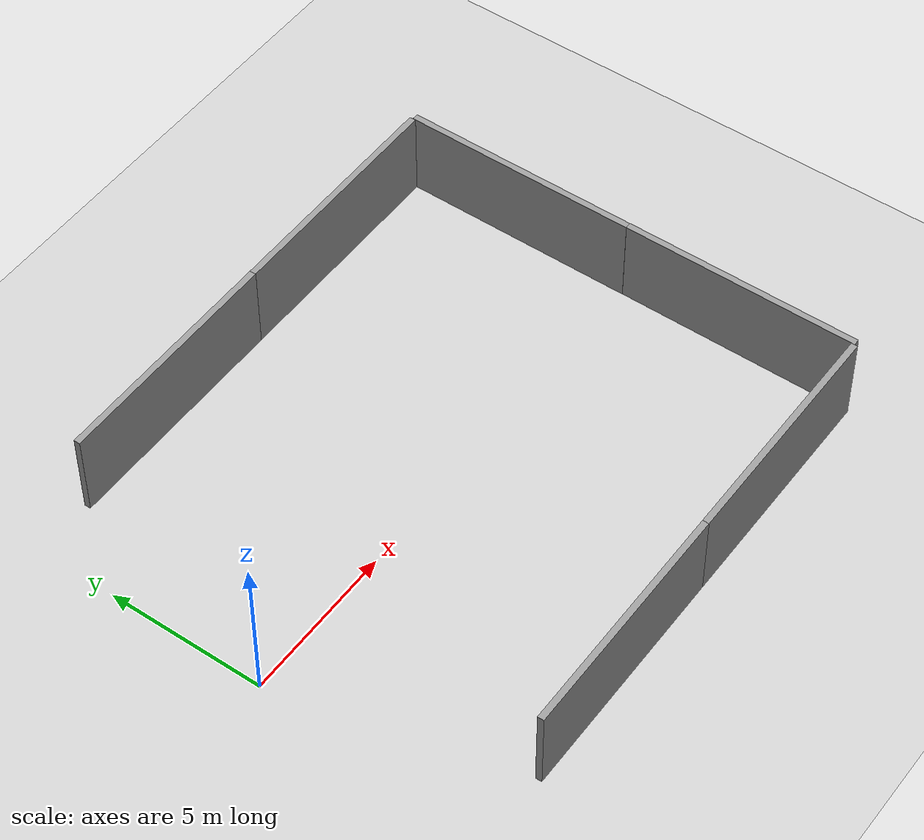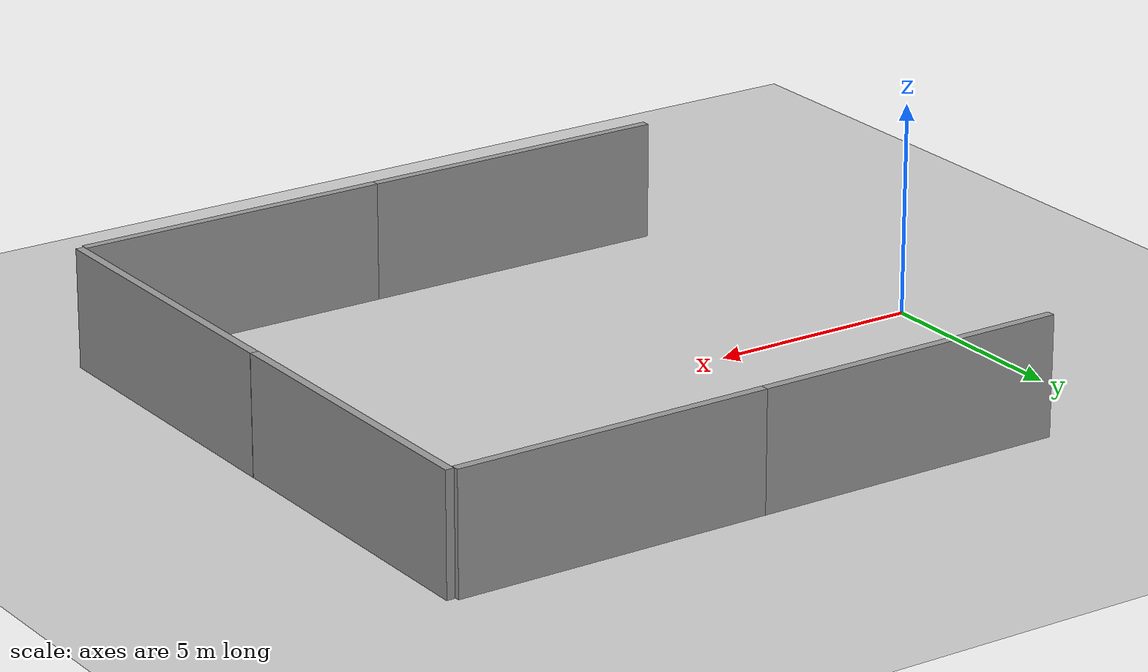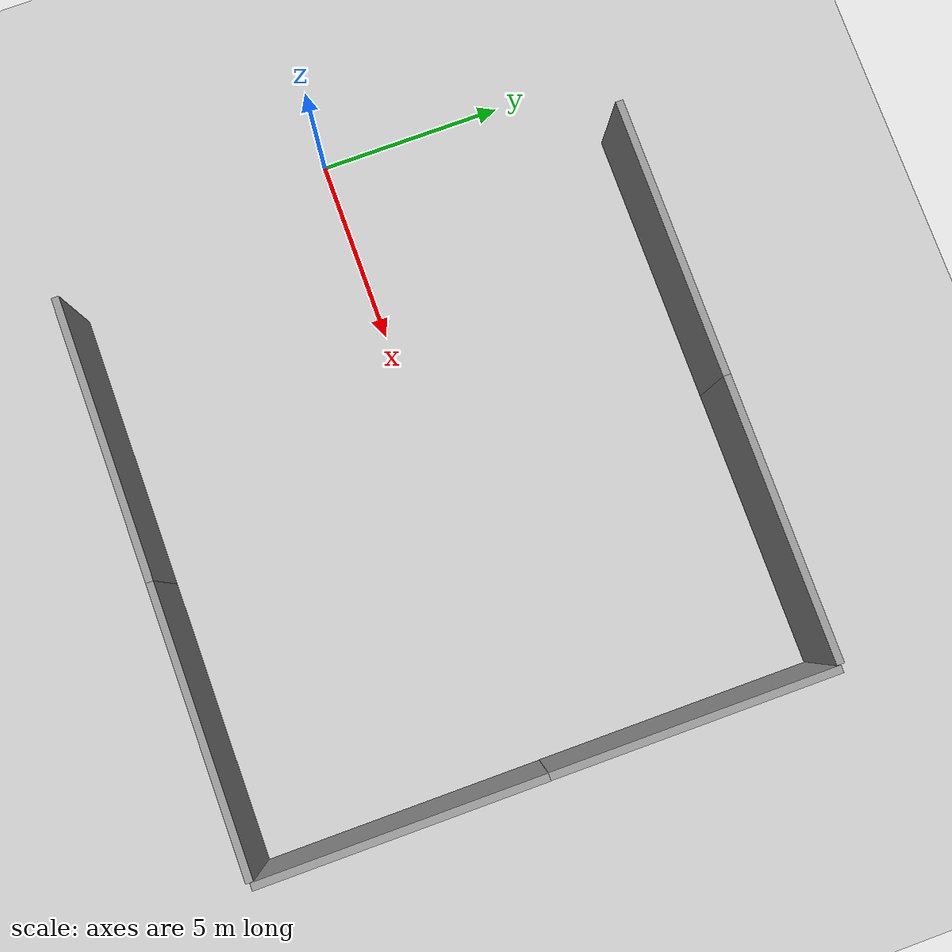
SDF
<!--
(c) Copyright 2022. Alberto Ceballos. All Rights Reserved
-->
<sdf version="1.6">
 <world name="depth-air_world">
  <include><uri>model://ground_plane</uri><name>ground_plane</name><pose>9 0 0 0 0 0</pose></include>
  <include><uri>model://grey_wall</uri><name>wall_1</name><pose>17 3.75 0 0 0 1.57</pose></include>
  <include><uri>model://grey_wall</uri><name>wall_2</name><pose>17 -3.75 0 0 0 1.57</pose></include>
  <include><uri>model://grey_wall</uri><name>wall_3</name><pose>13.14 -7.5 0 0 0 0</pose></include>
  <include><uri>model://grey_wall</uri><name>wall_4</name><pose>13.14 7.5 0 0 0 0</pose></include>
  <include><uri>model://grey_wall</uri><name>wall_5</name><pose>5.64 -7.5 0 0 0 0</pose></include>
  <include><uri>model://grey_wall</uri><name>wall_6</name><pose>5.64 7.5 0 0 0 0</pose></include>
  <light type="directional" name="sun">
   <cast_shadows>false</cast_shadows>
   <pose>0 0 10 0 0 0</pose>
   <diffuse>0.8 0.8 0.8 1</diffuse>
   <specular>0.2 0.2 0.2 1</specular>
   <attenuation>
    <range>1000</range>
    <constant>0.9</constant>
    <linear>0.01</linear>
    <quadratic>0.001</quadratic>
   </attenuation>
   <direction>-0.5 0.1 -0.9</direction>
  </light>
 </world>
</sdf>

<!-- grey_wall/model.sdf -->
<sdf version="1.5">
  <model name="grey_wall">
    <static>true</static>
    <link name="link">
      <pose>0 0 1.4 0 0 0</pose>
      <collision name="collision">
        <geometry>
          <box>
            <size>7.5 0.2 2.8</size>
          </box>
        </geometry>
      </collision>
      <visual name="visual">
        <cast_shadows>false</cast_shadows>
        <geometry>
          <box>
            <size>7.5 0.2 2.8</size>
          </box>
        </geometry>
        <material>
          <script>
            <uri>model://grey_wall/materials/scripts</uri>
            <uri>model://grey_wall/materials/textures</uri>
            <name>vrc/grey_wall</name>
          </script>
        </material>
      </visual>
    </link>
  </model>
</sdf>
